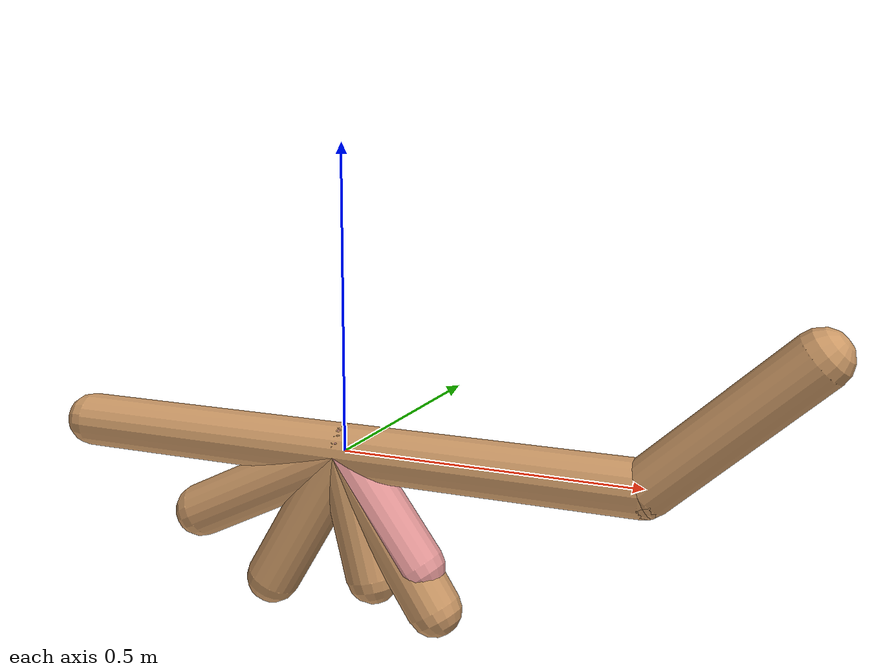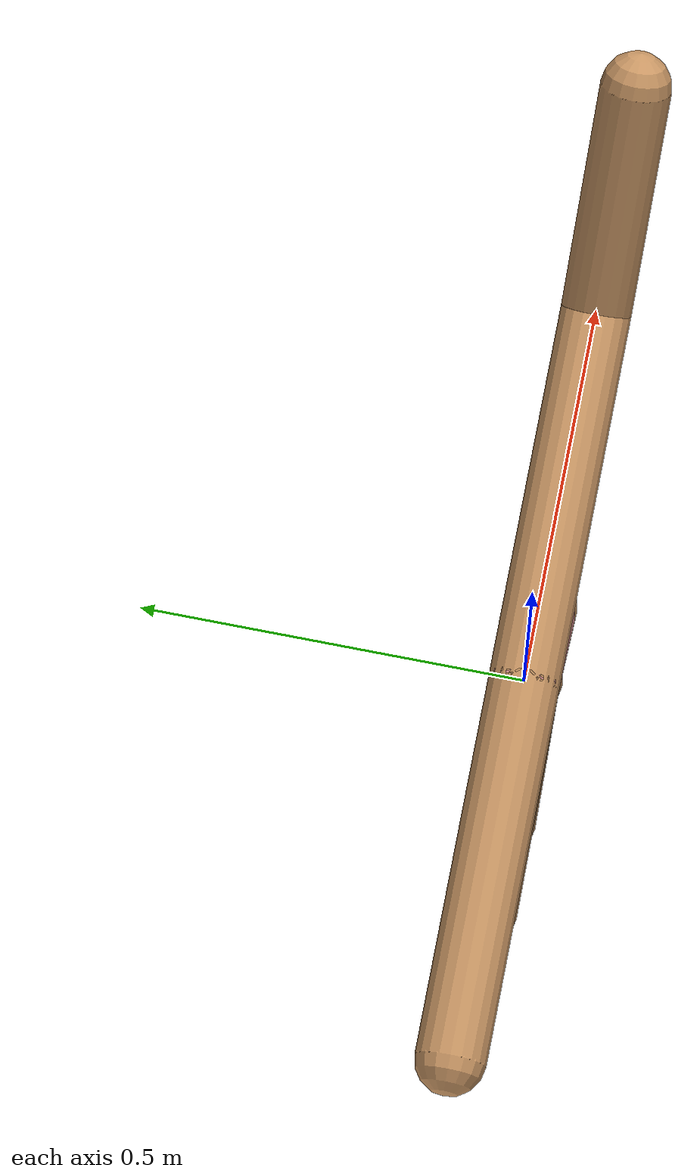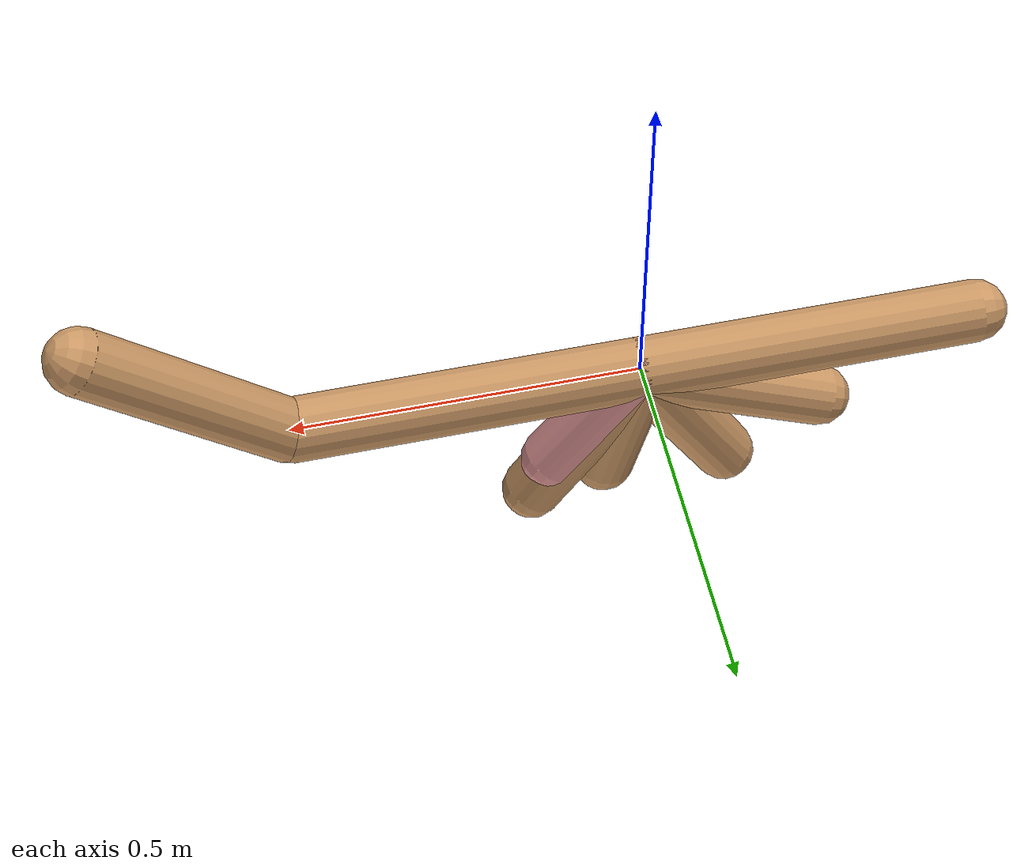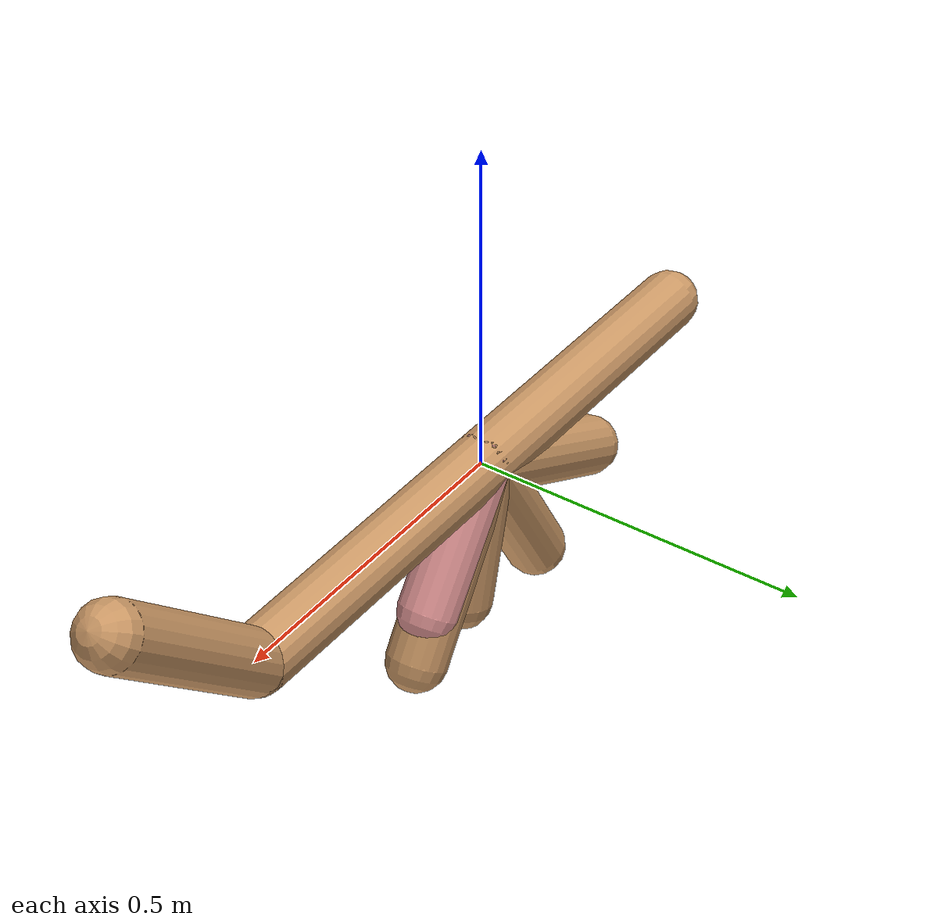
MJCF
<!-- converted to geom fromto version -->
<mujoco model="cheetah">
  <compiler angle="degree" coordinate="global" inertiafromgeom="true"/>
  <default>
    <joint armature=".1" damping=".01" limited="true" solimplimit="0 .8 .03" solreflimit=".02 1" stiffness="8"/>
    <geom conaffinity="0" condim="3" contype="1" friction="0.8 .1 .1" rgba="0.8 0.6 .4 1" solimp="0.0 0.8 0.01" solref="0.02 1"/>
    <motor ctrllimited="true" ctrlrange="-1 1"/>
  </default>
  <size nstack="300000" nuser_geom="1"/>
  <option gravity="0 0 -9.81" timestep="0.01"/>
  <worldbody>
    <body name="torso" pos="0 0 .7">
      <joint armature="0" axis="1 0 0" damping="0" limited="false" name="ignorex" pos="0 0 0" stiffness="0" type="slide"/>
      <joint armature="0" axis="0 0 1" damping="0" limited="false" name="ignorez" pos="0 0 0" stiffness="0" type="slide"/>
      <joint armature="0" axis="0 1 0" damping="0" limited="false" name="ignorey" pos="0 0 0" stiffness="0" type="hinge"/>
      <geom fromto="-.5 0 0 .5 0 0" name="torso" size="0.046" type="capsule"/>
      <geom fromto=".5 0 0 .74 0 .22" name="head" size="0.046" type="capsule"/>
      <body name="bthigh" pos="-.5 0 0">
        <joint axis="0 1 0" damping="6" name="bthigh" pos="0 0 0" range="-.52 1.05" stiffness="240" type="hinge"/>
        <geom fromto="0 0 0 .16 0 -.25" size="0.046" type="capsule"/>
        <body name="bshin" pos=".16 0 -.25">
          <joint axis="0 1 0" damping="4.5" name="bshin" pos="0 0 0" range="-.785 .785" stiffness="180" type="hinge"/>
          <geom fromto="0 0 0 -.28 0 -.14" size="0.046" type="capsule"/>
          <body name="bfoot" pos="-.28 0 -.14">
            <joint axis="0 1 0" damping="3" name="bfoot" pos="0 0 0" range="-.4 .785" stiffness="120" type="hinge"/>
            <geom fromto="0 0 0 .05 0 -.21" size="0.046" type="capsule"/>
            <inertial mass="10"/>
          </body>
        </body>
      </body>
      <body name="fthigh" pos=".5 0 0">
        <joint axis="0 1 0" damping="4.5" name="fthigh" pos="0 0 0" range="-1.5 0.8" stiffness="180" type="hinge"/>
        <geom fromto="0 0 0 -.14 0 -.24" name="fthigh" size="0.046" type="capsule"/>
        <body name="fshin" pos="-.14 0 -.24">
          <joint axis="0 1 0" damping="3" name="fshin" pos="0 0 0" range="-1.2 1.1" stiffness="120" type="hinge"/>
          <geom fromto="0 0 0 .13 0 -.18" name="fshin" rgba="0.9 0.6 0.6 1" size="0.046" type="capsule"/>
          <body name="ffoot" pos=".13 0 -.18">
            <joint axis="0 1 0" damping="1.5" name="ffoot" pos="0 0 0" range="-3.1 -0.3" stiffness="60" type="hinge"/>
            <geom fromto="0 0 0 .13 0 -.18" name="ffoot" rgba="0.9 0.6 0.6 1" size="0.046" type="capsule"/>
            <inertial mass="10"/>
          </body>
        </body>
      </body>
    </body>
  </worldbody>
  <actuator>
    <motor gear="120" joint="bthigh" name="bthigh"/>
    <motor gear="90" joint="bshin" name="bshin"/>
    <motor gear="60" joint="bfoot" name="bfoot"/>
    <motor gear="120" joint="fthigh" name="fthigh"/>
    <motor gear="60" joint="fshin" name="fshin"/>
    <motor gear="30" joint="ffoot" name="ffoot"/>
  </actuator>
</mujoco>
